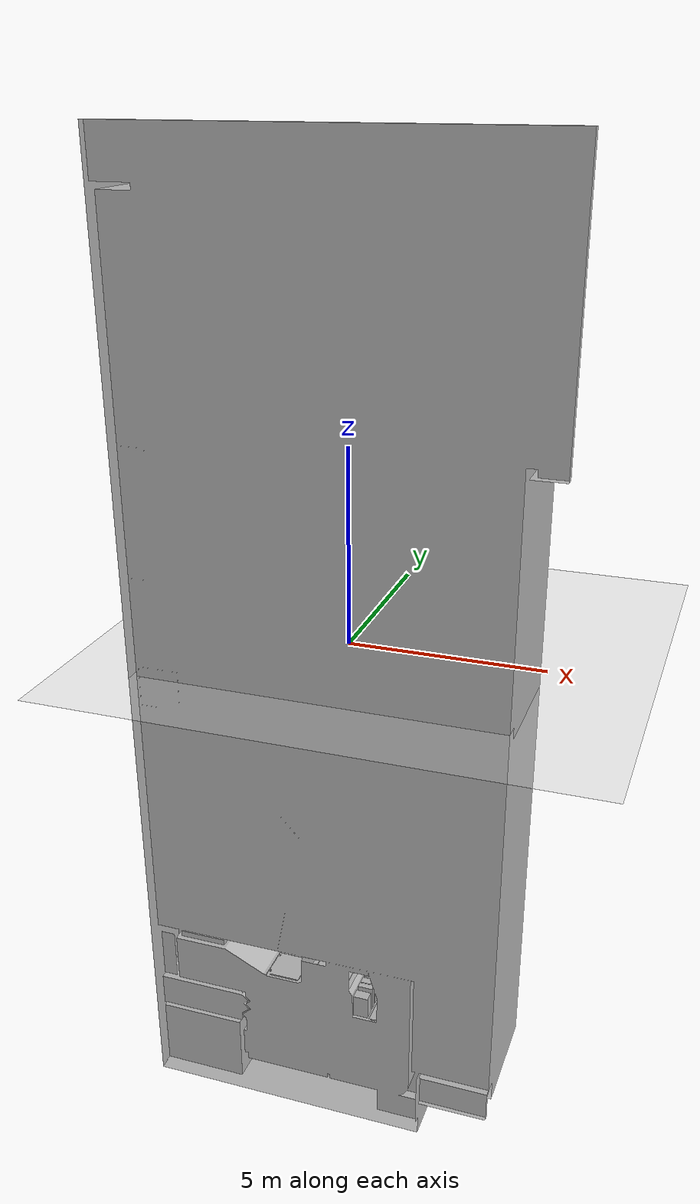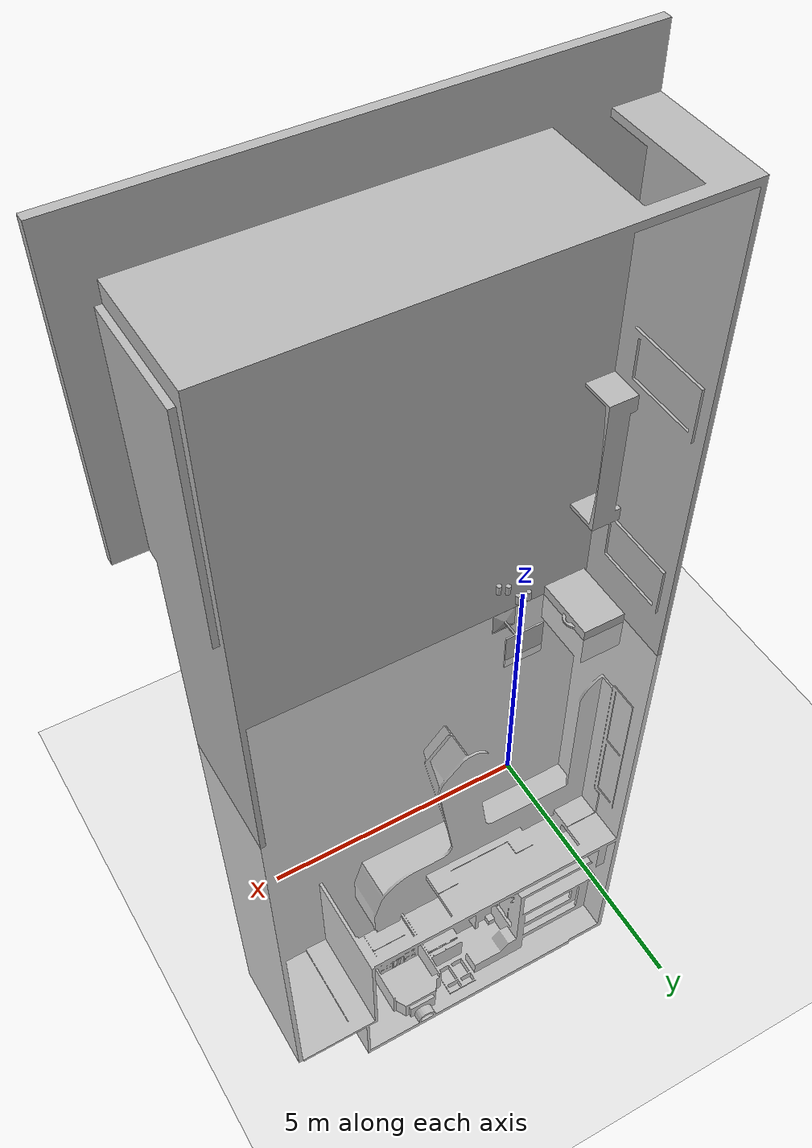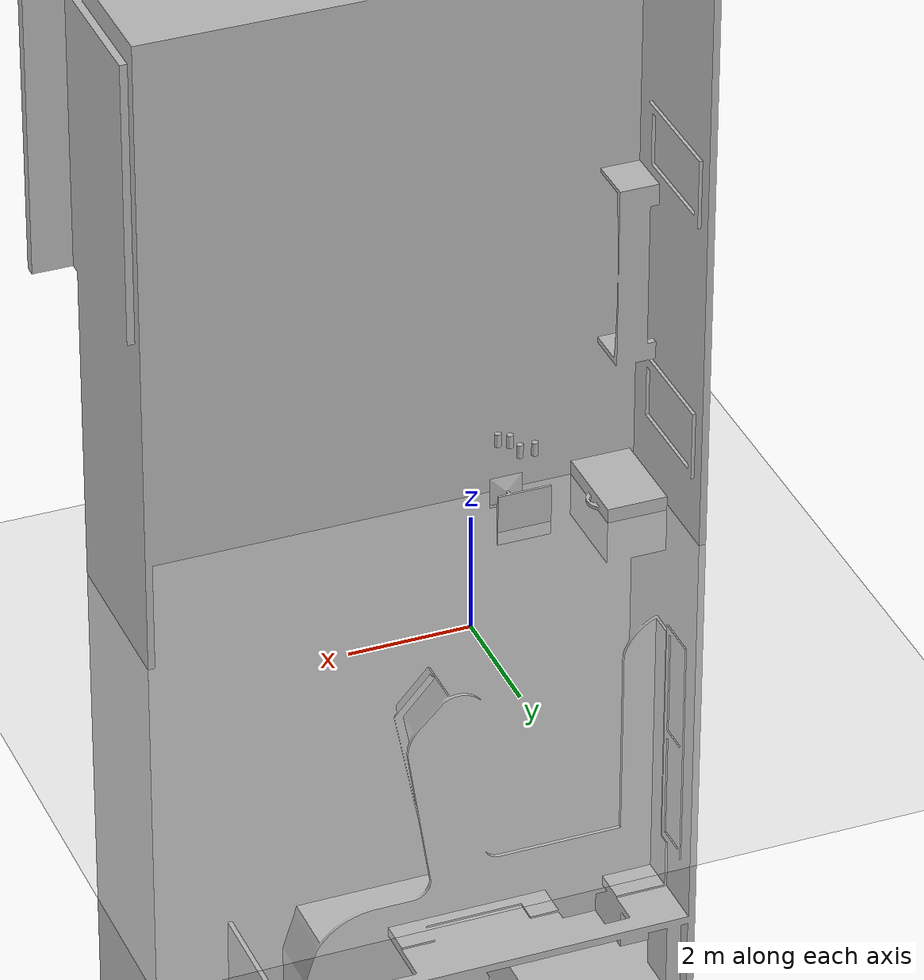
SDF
<sdf version="1.6">
 <world name="default">
  <light name="sun" type="directional">
   <pose>0 0 10 0 -0 0</pose>
   <diffuse>0.8 0.8 0.8 1</diffuse>
   <specular>0.1 0.1 0.1 1</specular>
   <attenuation>
    <range>1000</range>
    <constant>0.9</constant>
    <linear>0.01</linear>
    <quadratic>0.001</quadratic>
   </attenuation>
   <direction>-0.5 0.5 -1</direction>
  </light>
  <model name="ground_plane">
   <static>1</static>
   <link name="link">
    <collision name="collision">
     <geometry><plane><normal>0 0 1</normal><size>100 100</size></plane></geometry>
     <surface><friction><ode><mu>100</mu><mu2>50</mu2></ode></friction></surface>
    </collision>
    <visual name="visual">
     <cast_shadows>0</cast_shadows>
     <geometry><plane><normal>0 0 1</normal><size>100 100</size></plane></geometry>
     <material><script><uri>/worlds/gazebo.material</uri><name>Gazebo/Grey</name></script></material>
    </visual>
   </link>
  </model>
  <gravity>0 0 -9.8</gravity>
  <magnetic_field>6e-06 2.3e-05 -4.2e-05</magnetic_field>
  <atmosphere type="adiabatic"/>
  <physics name="default_physics" default="0" type="ode">
   <max_step_size>0.001</max_step_size>
   <real_time_factor>1</real_time_factor>
   <real_time_update_rate>1000</real_time_update_rate>
  </physics>
  <scene><ambient>0.4 0.4 0.4 1</ambient><background>0.7 0.7 0.7 1</background><shadows>1</shadows></scene>
  <spherical_coordinates>
   <surface_model>EARTH_WGS84</surface_model>
   <latitude_deg>0</latitude_deg>
   <longitude_deg>0</longitude_deg>
   <elevation>0</elevation>
   <heading_deg>0</heading_deg>
  </spherical_coordinates>
  <model name="cafe">
   <static>1</static>
   <link name="link">
    <collision name="main_floor">
     <pose>-0.4 -0.75 0.0948 0 -0 0</pose>
     <geometry><box><size>9.38 22.63 0.19</size></box></geometry>
    </collision>
    <collision name="wall_1">
     <pose>-5.03 0.53 1.415 0 -0 0</pose>
     <geometry><box><size>0.12 23.16 2.83</size></box></geometry>
    </collision>
    <collision name="wall_2">
     <pose>4.24 -0.31 1.415 0 -0 0</pose>
     <geometry><box><size>0.12 21.48 2.83</size></box></geometry>
    </collision>
    <collision name="wall_3">
     <pose>-1.48 7.43 1.415 0 -0 0</pose>
     <geometry><box><size>7.2 0.12 2.83</size></box></geometry>
    </collision>
    <collision name="wall_4">
     <pose>2.09 8.9 1.435 0 -0 0</pose>
     <geometry><box><size>0.12 3.05 2.87</size></box></geometry>
    </collision>
    <collision name="wall_5">
     <pose>3.155 10.4 1.435 0 -0 0</pose>
     <geometry><box><size>2.13 0.12 2.87</size></box></geometry>
    </collision>
    <collision name="wall_6">
     <pose>0.615 -10.98 1.415 0 -0 0</pose>
     <geometry><box><size>7.36 0.15 2.83</size></box></geometry>
    </collision>
    <collision name="wall_7">
     <pose>-4.62 -10.98 1.415 0 -0 0</pose>
     <geometry><box><size>0.93 0.15 2.83</size></box></geometry>
    </collision>
    <collision name="wall_8">
     <pose>-3.61 -10.98 2.69 0 -0 0</pose>
     <geometry><box><size>1.09 0.15 0.28</size></box></geometry>
    </collision>
    <collision name="coke">
     <pose>-4.385 0.26 0.95 0 -0 0</pose>
     <geometry><box><size>1.03 1.03 1.52</size></box></geometry>
    </collision>
    <visual name="visual">
     <geometry><mesh><uri>/worlds/models/cafe/cafe.obj</uri><scale>1 1 1</scale></mesh></geometry>
    </visual>
   </link>
   <pose>0.750337 -3.53912 0 0 -0 0</pose>
  </model>
  <model name="cafe_table">
   <static>1</static>
   <link name="link">
    <collision name="surface">
     <pose>0 0 0.755 0 -0 0</pose>
     <geometry><box><size>0.913 0.913 0.04</size></box></geometry>
    </collision>
    <collision name="column">
     <pose>0 0 0.37 0 -0 0</pose>
     <geometry><box><size>0.042 0.042 0.74</size></box></geometry>
    </collision>
    <collision name="base">
     <pose>0 0 0.02 0 -0 0</pose>
     <geometry><box><size>0.56 0.56 0.04</size></box></geometry>
    </collision>
    <visual name="visual">
     <geometry><mesh><uri>/worlds/models/cafe_table/cafe_table.obj</uri><scale>1 1 1</scale></mesh></geometry>
    </visual>
   </link>
   <pose>-1.81298 -3.00096 0.197351 0 -0 0</pose>
  </model>
  <model name="beer">
   <link name="link">
    <pose>0 0 0.115 0 -0 0</pose>
    <inertial>
     <mass>0.39</mass>
     <inertia><ixx>0.00058</ixx><ixy>0</ixy><ixz>0</ixz><iyy>0.00058</iyy><iyz>0</iyz><izz>0.00019</izz></inertia>
    </inertial>
    <collision name="collision">
     <geometry><cylinder><radius>0.055</radius><length>0.23</length></cylinder></geometry>
    </collision>
    <visual name="visual">
     <geometry><cylinder><radius>0.055</radius><length>0.23</length></cylinder></geometry>
     <material>
      <script>
       <uri>/worlds/models/beer/materials/scripts</uri>
       <uri>/worlds/models/beer/materials/textures</uri>
       <name>Beer/Diffuse</name>
      </script>
     </material>
    </visual>
   </link>
   <pose>-1.72201 -3.13748 0.972351 -3e-06 -1.2e-05 0.001948</pose>
  </model>
  <model name="beer_0">
   <link name="link">
    <pose>0 0 0.115 0 -0 0</pose>
    <inertial>
     <mass>0.39</mass>
     <inertia><ixx>0.00058</ixx><ixy>0</ixy><ixz>0</ixz><iyy>0.00058</iyy><iyz>0</iyz><izz>0.00019</izz></inertia>
    </inertial>
    <collision name="collision">
     <geometry><cylinder><radius>0.055</radius><length>0.23</length></cylinder></geometry>
    </collision>
    <visual name="visual">
     <geometry><cylinder><radius>0.055</radius><length>0.23</length></cylinder></geometry>
     <material>
      <script>
       <uri>/worlds/models/beer/materials/scripts</uri>
       <uri>/worlds/models/beer/materials/textures</uri>
       <name>Beer/Diffuse</name>
      </script>
     </material>
    </visual>
   </link>
   <pose>-1.92489 -2.72616 0.972352 1.7e-05 8e-06 0.00753</pose>
  </model>
  <model name="beer_1">
   <link name="link">
    <pose>0 0 0.115 0 -0 0</pose>
    <inertial>
     <mass>0.39</mass>
     <inertia><ixx>0.00058</ixx><ixy>0</ixy><ixz>0</ixz><iyy>0.00058</iyy><iyz>0</iyz><izz>0.00019</izz></inertia>
    </inertial>
    <collision name="collision">
     <geometry><cylinder><radius>0.055</radius><length>0.23</length></cylinder></geometry>
    </collision>
    <visual name="visual">
     <geometry><cylinder><radius>0.055</radius><length>0.23</length></cylinder></geometry>
     <material>
      <script>
       <uri>/worlds/models/beer/materials/scripts</uri>
       <uri>/worlds/models/beer/materials/textures</uri>
       <name>Beer/Diffuse</name>
      </script>
     </material>
    </visual>
   </link>
   <pose>-1.88845 -3.03719 0.972356 2.4e-05 8.9e-05 1.7514</pose>
  </model>
  <model name="beer_2">
   <link name="link">
    <pose>0 0 0.115 0 -0 0</pose>
    <inertial>
     <mass>0.39</mass>
     <inertia><ixx>0.00058</ixx><ixy>0</ixy><ixz>0</ixz><iyy>0.00058</iyy><iyz>0</iyz><izz>0.00019</izz></inertia>
    </inertial>
    <collision name="collision">
     <geometry><cylinder><radius>0.055</radius><length>0.23</length></cylinder></geometry>
    </collision>
    <visual name="visual">
     <geometry><cylinder><radius>0.055</radius><length>0.23</length></cylinder></geometry>
     <material>
      <script>
       <uri>/worlds/models/beer/materials/scripts</uri>
       <uri>/worlds/models/beer/materials/textures</uri>
       <name>Beer/Diffuse</name>
      </script>
     </material>
    </visual>
   </link>
   <pose>-2.16658 -2.70102 0.97234 -1e-06 2.6e-05 7.9e-05</pose>
  </model>
 </world>
</sdf>
